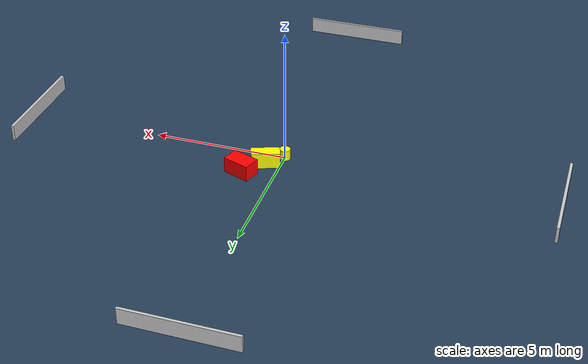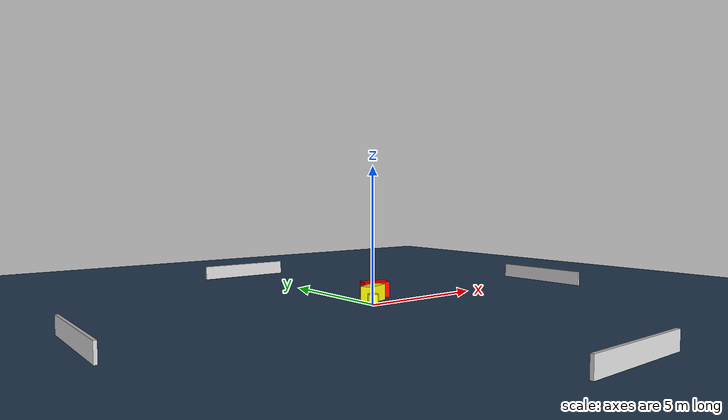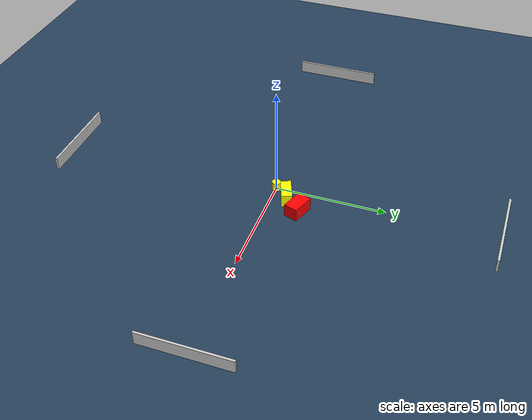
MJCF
<?xml version="1.0" ?>
<mujoco model="generated_environment">
  <option timestep="0.01" integrator="RK4" cone="elliptic"/>
  <default>
    <geom density="1"/>
  </default>
  <asset>
    <texture builtin="gradient" height="3072" name="skybox" rgb1="0.3 0.5 0.7" rgb2="0 0 0" type="skybox" width="512"/>
    <texture builtin="checker" height="300" name="groundplane" rgb1="0.2 0.3 0.4" rgb2="0.1 0.2 0.3" type="2d" width="300"/>
    <material name="groundplane" reflectance="0.2" texrepeat="5 5" texture="groundplane"/>
  </asset>
  <worldbody>
    <light dir="0 0 -1" directional="true" pos="0 0 1.5"/>
    <geom condim="3" friction="0.5 0.005 0.001" material="groundplane" name="floor" pos="0 0 0" size="0 0 0.05" type="plane"/>
    <body name="walls">
      <geom name="wall_1" condim="4" pos="-10.0 0.0 0.3" rgba="0.800000011920929 0.800000011920929 0.800000011920929 1.0" size="0.05 2.0 0.3" type="box"/>
      <geom name="wall_2" condim="4" pos="10.0 0.0 0.3" rgba="0.800000011920929 0.800000011920929 0.800000011920929 1.0" size="0.05 2.0 0.3" type="box"/>
      <geom name="wall_3" condim="4" pos="0.0 -10.0 0.3" rgba="0.800000011920929 0.800000011920929 0.800000011920929 1.0" size="2.0 0.05 0.3" type="box"/>
      <geom name="wall_4" condim="4" pos="0.0 10.0 0.3" rgba="0.800000011920929 0.800000011920929 0.800000011920929 1.0" size="2.0 0.05 0.3" type="box"/>
    </body>
    <body name="robot">
      <joint name="joint_x" type="slide" pos="0 0 0" axis="1 0 0"/>
      <joint name="joint_y" type="slide" pos="0 0 0" axis="0 1 0"/>
      <geom name="robot" type="cylinder" pos="0.0 0.0 0.2" size="0.2 0.2 0.0" mass="5.0" friction="1.0 0.005 0.0001" condim="4" rgba="1.0 1.0 0.0 1.0"/>
    </body>
    <body name="obstacle_1_movable">
      <geom name="obstacle_1_movable" condim="4" pos="0.5332798016827704 0.6415967842711202 0.3" euler="0 0 20.979055613083407" friction="0.0 0.005 0.001" rgba="1.0 1.0 0.0 1.0" size="0.5225404899061634 0.23276099113518187 0.3" type="box" mass="0.1"/>
      <joint type="free"/>
    </body>
    <body name="obstacle_2_static">
      <geom name="obstacle_2_static" condim="4" pos="1.2078393116599109 1.382994295512136 0.3" euler="0 0 70.38899863519995" friction="0.0 0.005 0.001" rgba="1.0 0.0 0.0 1.0" size="0.3174160537431509 0.5097784087498962 0.3" type="box"/>
    </body>
  </worldbody>
  <actuator>
    <motor name="actuator_x" joint="joint_x" gear="1" ctrlrange="-1 1"/>
    <motor name="actuator_y" joint="joint_y" gear="1" ctrlrange="-1 1"/>
  </actuator>
</mujoco>
